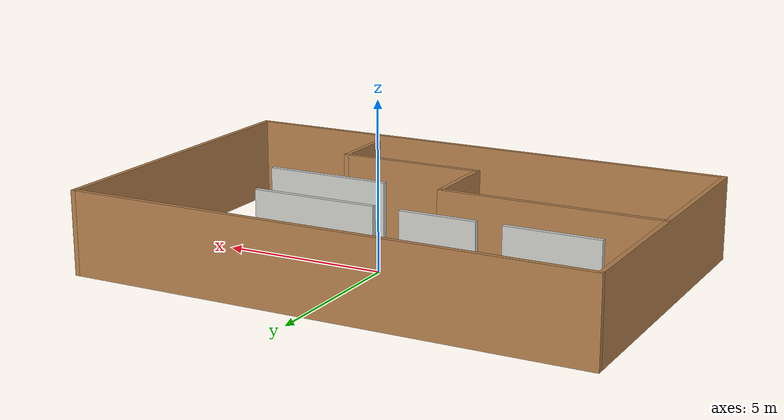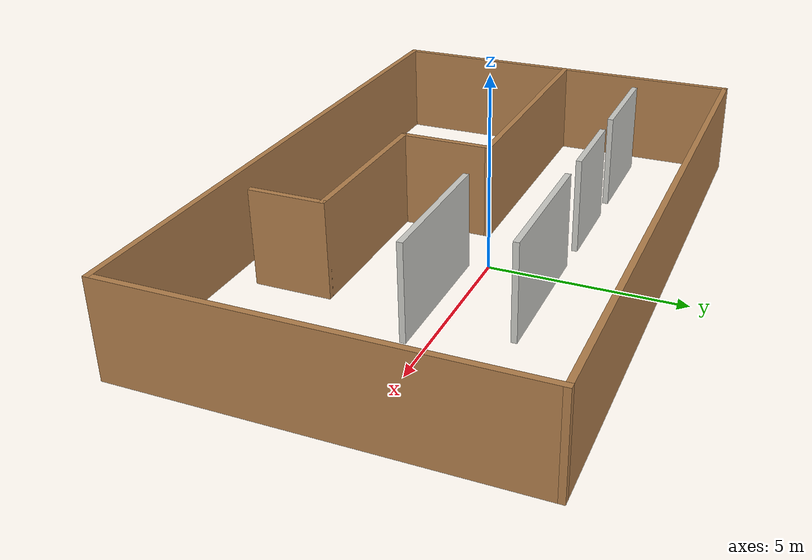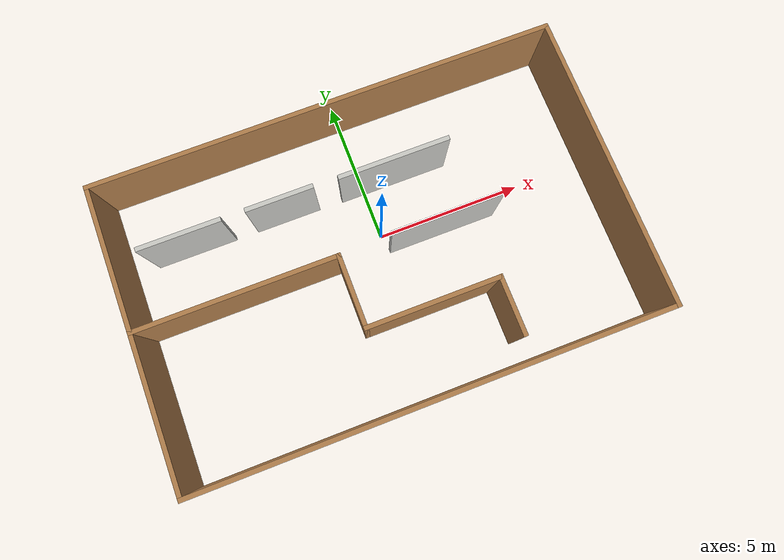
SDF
<?xml version='1.0'?>
<sdf version='1.6'>
  <model name='clothingStore'>
    <pose frame=''>-0.431566 -0.744183 0 0 -0 0</pose>
    <link name='Wall_0'>
      <collision name='Wall_0_Collision'>
        <geometry>
          <box>
            <size>15.75 0.15 2.5</size>
          </box>
        </geometry>
        <pose frame=''>0 0 1.25 0 -0 0</pose>
      </collision>
      <visual name='Wall_0_Visual'>
        <pose frame=''>0 0 1.25 0 -0 0</pose>
        <geometry>
          <box>
            <size>15.75 0.15 2.5</size>
          </box>
        </geometry>
        <material>
          <script>
            <uri>file://media/materials/scripts/gazebo.material</uri>
            <name>Gazebo/Wood</name>
          </script>
          <ambient>1 1 1 1</ambient>
        </material>
        <meta>
          <layer>0</layer>
        </meta>
      </visual>
      <pose frame=''>0 4.925 0 0 -0 3.14159</pose>
    </link>
    <link name='Wall_1'>
      <collision name='Wall_1_Collision'>
        <geometry>
          <box>
            <size>10 0.15 2.5</size>
          </box>
        </geometry>
        <pose frame=''>0 0 1.25 0 -0 0</pose>
      </collision>
      <visual name='Wall_1_Visual'>
        <pose frame=''>0 0 1.25 0 -0 0</pose>
        <geometry>
          <box>
            <size>10 0.15 2.5</size>
          </box>
        </geometry>
        <material>
          <script>
            <uri>file://media/materials/scripts/gazebo.material</uri>
            <name>Gazebo/Wood</name>
          </script>
          <ambient>1 1 1 1</ambient>
        </material>
        <meta>
          <layer>0</layer>
        </meta>
      </visual>
      <pose frame=''>-7.8 0 0 0 -0 -1.5708</pose>
    </link>
    <link name='Wall_11'>
      <collision name='Wall_11_Collision'>
        <geometry>
          <box>
            <size>3.75 0.15 2.5</size>
          </box>
        </geometry>
        <pose frame=''>0 0 1.25 0 -0 0</pose>
      </collision>
      <visual name='Wall_11_Visual'>
        <pose frame=''>0 0 1.25 0 -0 0</pose>
        <geometry>
          <box>
            <size>3.75 0.15 2.5</size>
          </box>
        </geometry>
        <material>
          <script>
            <uri>file://media/materials/scripts/gazebo.material</uri>
            <name>Gazebo/CeilingTiled</name>
          </script>
          <ambient>1 1 1 1</ambient>
        </material>
        <meta>
          <layer>0</layer>
        </meta>
      </visual>
      <pose frame=''>2.40735 0.190165 0 0 -0 0</pose>
    </link>
    <link name='Wall_13'>
      <collision name='Wall_13_Collision'>
        <geometry>
          <box>
            <size>3.75 0.15 2.5</size>
          </box>
        </geometry>
        <pose frame=''>0 0 1.25 0 -0 0</pose>
      </collision>
      <visual name='Wall_13_Visual'>
        <pose frame=''>0 0 1.25 0 -0 0</pose>
        <geometry>
          <box>
            <size>3.75 0.15 2.5</size>
          </box>
        </geometry>
        <material>
          <script>
            <uri>file://media/materials/scripts/gazebo.material</uri>
            <name>Gazebo/CeilingTiled</name>
          </script>
          <ambient>1 1 1 1</ambient>
        </material>
        <meta>
          <layer>0</layer>
        </meta>
      </visual>
      <pose frame=''>1.50294 2.45118 0 0 -0 0</pose>
    </link>
    <link name='Wall_15'>
      <collision name='Wall_15_Collision'>
        <geometry>
          <box>
            <size>2.25 0.15 2.5</size>
          </box>
        </geometry>
        <pose frame=''>0 0 1.25 0 -0 0</pose>
      </collision>
      <visual name='Wall_15_Visual'>
        <pose frame=''>0 0 1.25 0 -0 0</pose>
        <geometry>
          <box>
            <size>2.25 0.15 2.5</size>
          </box>
        </geometry>
        <material>
          <script>
            <uri>file://media/materials/scripts/gazebo.material</uri>
            <name>Gazebo/CeilingTiled</name>
          </script>
          <ambient>1 1 1 1</ambient>
        </material>
        <meta>
          <layer>0</layer>
        </meta>
      </visual>
      <pose frame=''>-2.30608 2.47778 0 0 -0 0</pose>
    </link>
    <link name='Wall_17'>
      <collision name='Wall_17_Collision'>
        <geometry>
          <box>
            <size>2.75 0.15 2.5</size>
          </box>
        </geometry>
        <pose frame=''>0 0 1.25 0 -0 0</pose>
      </collision>
      <visual name='Wall_17_Visual'>
        <pose frame=''>0 0 1.25 0 -0 0</pose>
        <geometry>
          <box>
            <size>2.75 0.15 2.5</size>
          </box>
        </geometry>
        <material>
          <script>
            <uri>file://media/materials/scripts/gazebo.material</uri>
            <name>Gazebo/CeilingTiled</name>
          </script>
          <ambient>1 1 1 1</ambient>
        </material>
        <meta>
          <layer>0</layer>
        </meta>
      </visual>
      <pose frame=''>-5.56731 2.47778 0 0 -0 0</pose>
    </link>
    <link name='Wall_2'>
      <collision name='Wall_2_Collision'>
        <geometry>
          <box>
            <size>15.75 0.15 2.5</size>
          </box>
        </geometry>
        <pose frame=''>0 0 1.25 0 -0 0</pose>
      </collision>
      <visual name='Wall_2_Visual'>
        <pose frame=''>0 0 1.25 0 -0 0</pose>
        <geometry>
          <box>
            <size>15.75 0.15 2.5</size>
          </box>
        </geometry>
        <material>
          <script>
            <uri>file://media/materials/scripts/gazebo.material</uri>
            <name>Gazebo/Wood</name>
          </script>
          <ambient>1 1 1 1</ambient>
        </material>
        <meta>
          <layer>0</layer>
        </meta>
      </visual>
      <pose frame=''>0 -4.925 0 0 -0 0</pose>
    </link>
    <link name='Wall_3'>
      <collision name='Wall_3_Collision'>
        <geometry>
          <box>
            <size>10 0.15 2.5</size>
          </box>
        </geometry>
        <pose frame=''>0 0 1.25 0 -0 0</pose>
      </collision>
      <visual name='Wall_3_Visual'>
        <pose frame=''>0 0 1.25 0 -0 0</pose>
        <geometry>
          <box>
            <size>10 0.15 2.5</size>
          </box>
        </geometry>
        <material>
          <script>
            <uri>file://media/materials/scripts/gazebo.material</uri>
            <name>Gazebo/Wood</name>
          </script>
          <ambient>1 1 1 1</ambient>
        </material>
        <meta>
          <layer>0</layer>
        </meta>
      </visual>
      <pose frame=''>7.8 0 0 0 -0 1.5708</pose>
    </link>
    <link name='Wall_6'>
      <collision name='Wall_6_Collision'>
        <geometry>
          <box>
            <size>6.75 0.15 2.5</size>
          </box>
        </geometry>
        <pose frame=''>0 0 1.25 0 -0 0</pose>
      </collision>
      <visual name='Wall_6_Visual'>
        <pose frame=''>0 0 1.25 0 -0 0</pose>
        <geometry>
          <box>
            <size>6.75 0.15 2.5</size>
          </box>
        </geometry>
        <material>
          <script>
            <uri>file://media/materials/scripts/gazebo.material</uri>
            <name>Gazebo/Wood</name>
          </script>
          <ambient>1 1 1 1</ambient>
        </material>
        <meta>
          <layer>0</layer>
        </meta>
      </visual>
      <pose frame=''>-4.49831 0.110364 0 0 -0 0</pose>
    </link>
    <link name='Wall_7'>
      <collision name='Wall_7_Collision'>
        <geometry>
          <box>
            <size>2.5 0.15 2.5</size>
          </box>
        </geometry>
        <pose frame=''>0 0 1.25 0 -0 0</pose>
      </collision>
      <visual name='Wall_7_Visual'>
        <pose frame=''>0 0 1.25 0 -0 0</pose>
        <geometry>
          <box>
            <size>2.5 0.15 2.5</size>
          </box>
        </geometry>
        <material>
          <script>
            <uri>file://media/materials/scripts/gazebo.material</uri>
            <name>Gazebo/Wood</name>
          </script>
          <ambient>1 1 1 1</ambient>
        </material>
        <meta>
          <layer>0</layer>
        </meta>
      </visual>
      <pose frame=''>-1.19832 -1.06464 0 0 -0 -1.5708</pose>
    </link>
    <link name='Wall_8'>
      <collision name='Wall_8_Collision'>
        <geometry>
          <box>
            <size>4.5 0.15 2.5</size>
          </box>
        </geometry>
        <pose frame=''>0 0 1.25 0 -0 0</pose>
      </collision>
      <visual name='Wall_8_Visual'>
        <pose frame=''>0 0 1.25 0 -0 0</pose>
        <geometry>
          <box>
            <size>4.5 0.15 2.5</size>
          </box>
        </geometry>
        <material>
          <script>
            <uri>file://media/materials/scripts/gazebo.material</uri>
            <name>Gazebo/Wood</name>
          </script>
          <ambient>1 1 1 1</ambient>
        </material>
        <meta>
          <layer>0</layer>
        </meta>
      </visual>
      <pose frame=''>0.976685 -2.23964 0 0 -0 0</pose>
    </link>
    <link name='Wall_9'>
      <collision name='Wall_9_Collision'>
        <geometry>
          <box>
            <size>2 0.15 2.5</size>
          </box>
        </geometry>
        <pose frame=''>0 0 1.25 0 -0 0</pose>
      </collision>
      <visual name='Wall_9_Visual'>
        <pose frame=''>0 0 1.25 0 -0 0</pose>
        <geometry>
          <box>
            <size>2 0.15 2.5</size>
          </box>
        </geometry>
        <material>
          <script>
            <uri>file://media/materials/scripts/gazebo.material</uri>
            <name>Gazebo/Wood</name>
          </script>
          <ambient>1 1 1 1</ambient>
        </material>
        <meta>
          <layer>0</layer>
        </meta>
      </visual>
      <pose frame=''>3.15169 -3.16464 0 0 -0 -1.5708</pose>
    </link>
    <static>1</static>
  </model>
</sdf>
